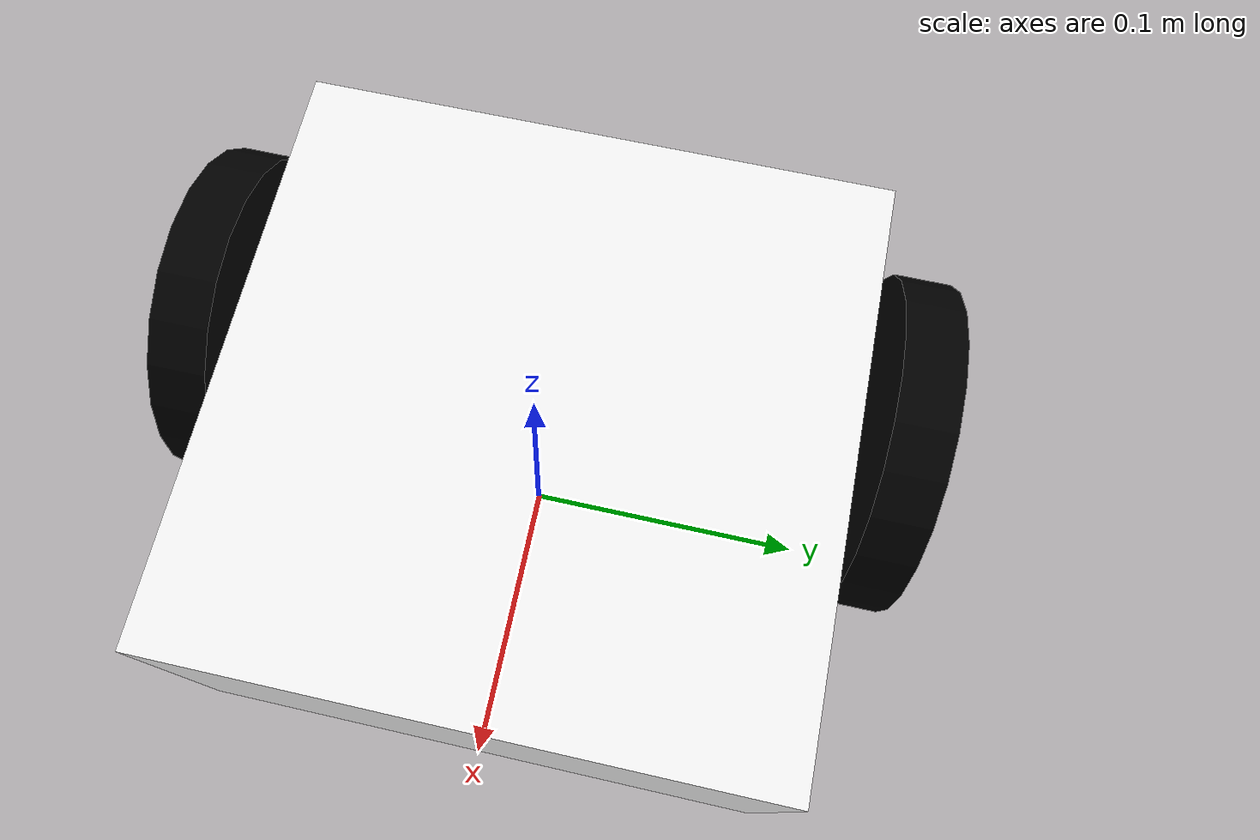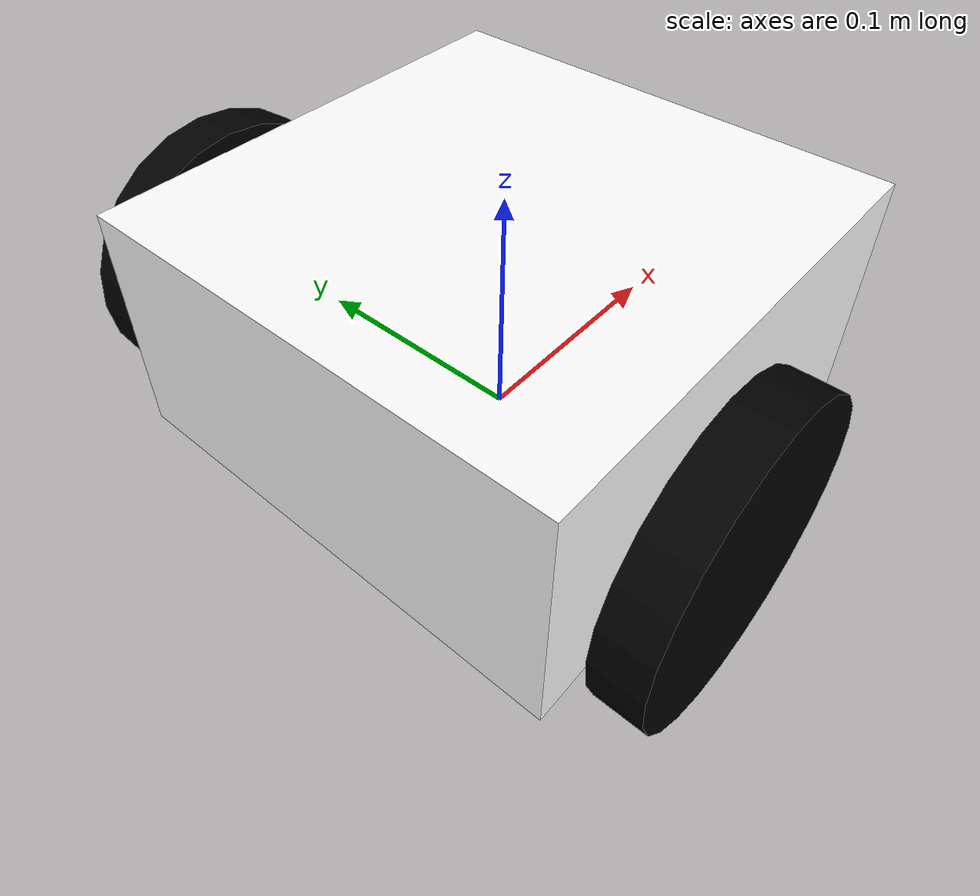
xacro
<?xml version="1.0"?>
<robot xmlns:xacro="http://www.ros.org/wiki/xacro"  name="robot">

    <xacro:include filename="inertial_macros.xacro"/>

    <material name="white">
        <color rgba="1 1 1 1"/>
    </material>

    <material name="red">
        <color rgba="1 0 0 1"/>
    </material>

    <material name="black">
        <color rgba="0 0 0 1"/>
    </material>

    <!-- base link -->
    <link name= "base_link">
    </link>

    <!-- chassis -->
    <joint name="chassis_joint" type="fixed">
        <parent link="base_link"/>
        <child link="chassis"/>
        <origin xyz="-0.1 0 0"/>
    </joint>

    <link name="chassis">
        <visual>
            <origin xyz="0.1 0 0.05" rpy="0 0 0"/>
            <geometry>
                <box size="0.2 0.2 0.1"/>
            </geometry>
            <material name="white"/>
        </visual>
        <collision>
            <origin xyz="0.1 0 0.05" rpy="0 0 0"/>
            <geometry>
                <box size="0.2 0.2 0.1"/>
            </geometry>
        </collision>
        <xacro:inertial_box mass="0.5" x="0.2" y="0.2" z="0.1">
        <origin xyz="0.1 0 0.05" rpy="0 0 0"/>
    </xacro:inertial_box>
    </link>
    <gazebo reference="chassis">
        <material>Gazebo/White</material>
    </gazebo>

    <!-- left wheel -->
    <joint name="left_wheel_joint" type="continuous">
     <parent link="base_link"/>
     <child link="left_wheel"/>
     <origin xyz="-0.035 0.12 0.04" rpy="-${pi/2} 0 0"/>
     <axis xyz="0 0 1"/>
    </joint>

    <link name="left_wheel">
      <visual>
        <geometry>
            <cylinder length="0.02" radius="0.06"/>
        </geometry>
        <material name="black"/>
      </visual>
      <collision>
        <geometry>
            <cylinder length="0.02" radius="0.06"/>
        </geometry>
      </collision>
      <xacro:inertial_cylinder mass="0.1" length="0.02" radius="0.06">
        <origin xyz="0 0 0" rpy="0 0 0"/>
       </xacro:inertial_cylinder>
    </link>
    <gazebo reference="left_wheel">
        <material>Gazebo/Black</material>
    </gazebo>

    <!-- right wheel -->
    <joint name="right_wheel_joint" type="continuous">
        <parent link="base_link"/>
        <child link="right_wheel"/>
        <origin xyz="-0.035 -0.12 0.04" rpy="-${pi/2} 0 0"/>
        <axis xyz="0 0 1"/>
       </joint>

       <link name="right_wheel">
         <visual>
           <geometry>
               <cylinder length="0.02" radius="0.06"/>
           </geometry>
           <material name="black"/>
         </visual>
         <collision>
            <geometry>
                <cylinder length="0.02" radius="0.06"/>
            </geometry>
        </collision>
        <xacro:inertial_cylinder mass="0.1" length="0.02" radius="0.06">
            <origin xyz="0 0 0" rpy="0 0 0"/>
        </xacro:inertial_cylinder>
       </link>
       <gazebo reference="right_wheel">
        <material>Gazebo/Black</material>
       </gazebo>

       <!-- caster wheel -->
   <joint name="caster_wheel_joint" type="fixed">
    <parent link="chassis"/>
    <child link="caster_wheel"/>
    <origin xyz="0.16 0 0" rpy="0 0 0"/>
   </joint>

  <link name="caster_wheel">
    <visual>
        <geometry>
            <sphere radius="0.021"/>
        </geometry>
        <material name="black"/>
    </visual>
    <collision>
        <geometry>
            <sphere radius="0.021"/>
        </geometry>
    </collision>
    <xacro:inertial_sphere mass="0.1" radius="0.021">
        <origin xyz="0 0 0" rpy="0 0 0"/>
    </xacro:inertial_sphere>
  </link>
  <gazebo reference="caster_wheel">
    <material>Gazebo/Black</material>
    <mu1 value="0.001"/>
    <mu2 value="0.001"/>
   </gazebo>
</robot>
